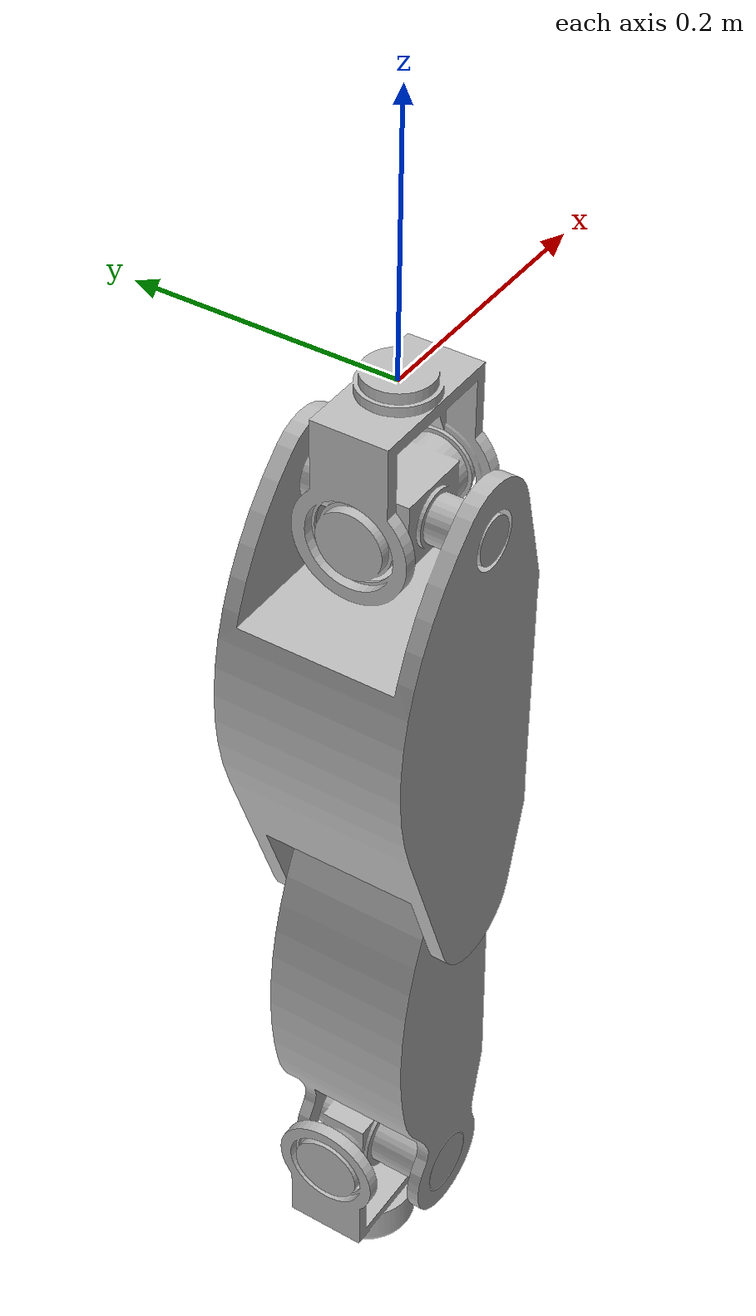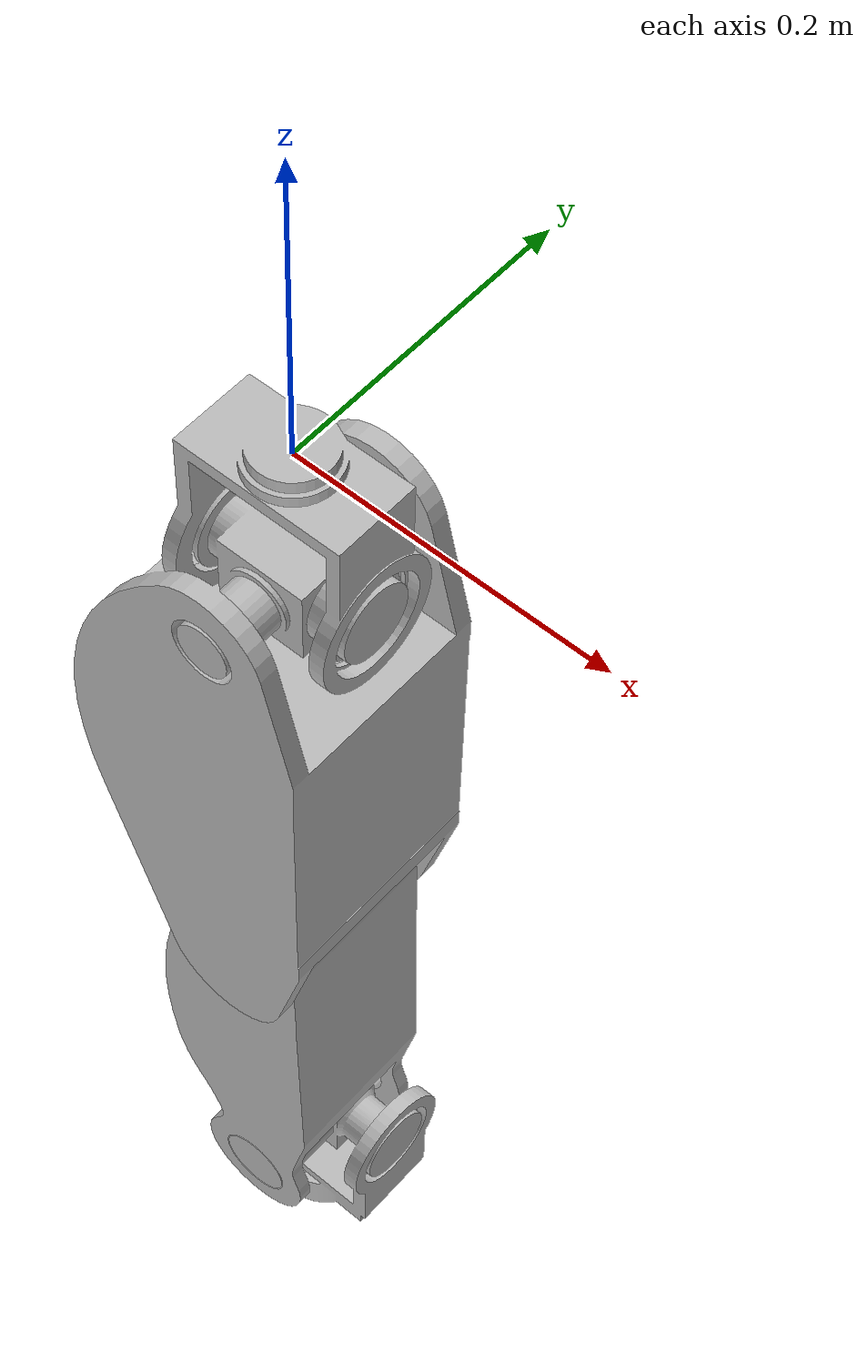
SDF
<?xml version='1.0'?>
<sdf version='1.6'>
  <model name='teo_rightLeg'>

    <link name='AxialRightHip_link'>
      <pose>0 0 0 0 -0 0</pose>
      <inertial>
        <pose>0.000089 -0.000389 -0.065985 0 -0 0</pose>
        <mass>0.84945</mass>
        <inertia>
          <ixx>0.001564202</ixx>
          <ixy>0</ixy>
          <ixz>0.0000025</ixz>
          <iyy>0.002645089</iyy>
          <iyz>0</iyz>
          <izz>0.001706349</izz>
        </inertia>
      </inertial>
      <visual name='AxialRightHip_visual'>
        <geometry>
          <mesh>
            <uri>model://teo/meshes/visual/AxialRightHip.dae</uri>
          </mesh>
        </geometry>
      </visual>
    </link>

    <joint name='AxialRightHip' type='revolute'>
      <parent>teo::RootWaist_links</parent>
      <child>teo_rightLeg::AxialRightHip_link</child>
      <axis>
        <xyz>0 0 1</xyz>
        <limit>
          <lower>-0.57</lower>
          <upper>0.49</upper>
        </limit>
      </axis>
    </joint>

    <link name='SagittalRightHip_link'>
      <pose>0 0 -0.092 0 -0 0</pose>
      <inertial>
        <pose>-0.000636 0.001058 0.000349 0 -0 0</pose>
        <mass>1.45459</mass>
        <inertia>
          <ixx>0.001545815</ixx>
          <ixy>-0.00000297</ixy>
          <ixz>-4.07e-09</ixz>
          <iyy>0.00119159</iyy>
          <iyz>9.16e-09</iyz>
          <izz>0.002270482</izz>
        </inertia>
      </inertial>
      <visual name='SagittalRightHip_visual'>
        <geometry>
          <mesh>
            <uri>model://teo/meshes/visual/SagittalRightHip.dae</uri>
          </mesh>
        </geometry>
      </visual>
    </link>

    <joint name='SagittalRightHip' type='revolute'>
      <parent>teo_rightLeg::AxialRightHip_link</parent>
      <child>teo_rightLeg::SagittalRightHip_link</child>
      <axis>
        <xyz>1 0 0</xyz>
        <limit>
          <lower>-0.25</lower>
          <upper>0.22</upper>
        </limit>
      </axis>
    </joint>

    <link name='FrontalRightHip_link'>
      <pose>0 0 -0.092 0 -0 0</pose>
      <inertial>
        <pose>-0.010862 -0.000006 -0.161205 0 -0 0</pose>
        <mass>1.89152</mass>
        <inertia>
          <ixx>0.015077735</ixx>
          <ixy>0</ixy>
          <ixz>-0.000442074</ixz>
          <iyy>0.015112044</iyy>
          <iyz>0</iyz>
          <izz>0.00747346</izz>
        </inertia>
      </inertial>
      <visual name='FrontalRightHip_visual'>
        <geometry>
          <mesh>
            <uri>model://teo/meshes/visual/FrontalRightHip.dae</uri>
          </mesh>
        </geometry>
      </visual>
    </link>

    <joint name='FrontalRightHip' type='revolute'>
      <parent>teo_rightLeg::SagittalRightHip_link</parent>
      <child>teo_rightLeg::FrontalRightHip_link</child>
      <axis>
        <xyz>0 1 0</xyz>
        <limit>
          <lower>-0.55</lower>
          <upper>0.74</upper>
        </limit>
      </axis>
    </joint>

    <link name='FrontalRightKnee_link'>
      <pose>0 0 -0.422 0 -0 0</pose>
      <inertial>
        <pose>-0.006614 -0.000411 -0.146413 0 -0 0</pose>
        <mass>1.94824</mass>
        <inertia>
          <ixx>0.02186171</ixx>
          <ixy>0</ixy>
          <ixz>0.00000316</ixz>
          <iyy>0.021411109</iyy>
          <iyz>0</iyz>
          <izz>0.003843636</izz>
        </inertia>
      </inertial>
      <visual name='FrontalRightKnee_visual'>
        <geometry>
          <mesh>
            <uri>model://teo/meshes/visual/FrontalRightKnee.dae</uri>
          </mesh>
        </geometry>
      </visual>
    </link>

    <joint name='FrontalRightKnee' type='revolute'>
      <parent>teo_rightLeg::FrontalRightHip_link</parent>
      <child>teo_rightLeg::FrontalRightKnee_link</child>
      <axis>
        <xyz>0 1 0</xyz>
        <limit>
          <lower>-1.07</lower>
          <upper>1.44</upper>
        </limit>
      </axis>
    </joint>

    <link name='FrontalRightAnkle_link'>
      <pose>0 0.0175 -0.722 0 -0 0</pose>
      <inertial>
        <pose>0.002577 -0.013536 0.000182 0 -0 0</pose>
        <mass>1.50359</mass>
        <inertia>
          <ixx>0.001395488</ixx>
          <ixy>0.00000685</ixy>
          <ixz>1e-11</ixz>
          <iyy>0.001589358</iyy>
          <iyz>0</iyz>
          <izz>0.002418657</izz>
        </inertia>
      </inertial>
      <visual name='FrontalRightAnkle_visual'>
        <geometry>
          <mesh>
            <uri>model://teo/meshes/visual/FrontalRightAnkle.dae</uri>
          </mesh>
        </geometry>
      </visual>
    </link>

    <joint name='FrontalRightAnkle' type='revolute'>
      <parent>teo_rightLeg::FrontalRightKnee_link</parent>
      <child>teo_rightLeg::FrontalRightAnkle_link</child>
      <axis>
        <xyz>0 1 0</xyz>
        <limit>
          <lower>-0.4</lower>
          <upper>0.44</upper>
        </limit>
      </axis>
    </joint>

    <link name='SagittalRightAnkle_link'>
      <pose>0 0.0175 -0.722 0 -0 0</pose>
      <inertial>
        <pose>0.01003 0.000936 -0.0669 0 -0 0</pose>
        <mass>3.1334</mass>
        <inertia>
          <ixx>0.00774203</ixx>
          <ixy>0.000455866</ixy>
          <ixz>-0.001851657</ixz>
          <iyy>0.014781323</iyy>
          <iyz>-0.000147513</iyz>
          <izz>0.013361748</izz>
        </inertia>
      </inertial>
      <visual name='FrontalRightAnkle_visual'>
        <geometry>
          <mesh>
            <uri>model://teo/meshes/visual/SagittalRightAnkle.dae</uri>
          </mesh>
        </geometry>
      </visual>
    </link>

    <joint name='SagittalRightAnkle' type='revolute'>
      <parent>teo_rightLeg::FrontalRightAnkle_link</parent>
      <child>teo_rightLeg::SagittalRightAnkle_link</child>
      <axis>
        <xyz>1 0 0</xyz>
        <limit>
          <lower>-0.35</lower>
          <upper>0.74</upper>
        </limit>
      </axis>
    </joint>

    <plugin name='controlboard_rightLeg' filename='libgazebo_yarp_controlboard.so'>
      <yarpConfigurationFile>model://teo/conf/gazebo_teo_rightLeg.ini</yarpConfigurationFile>
    </plugin>

  </model>
</sdf>
